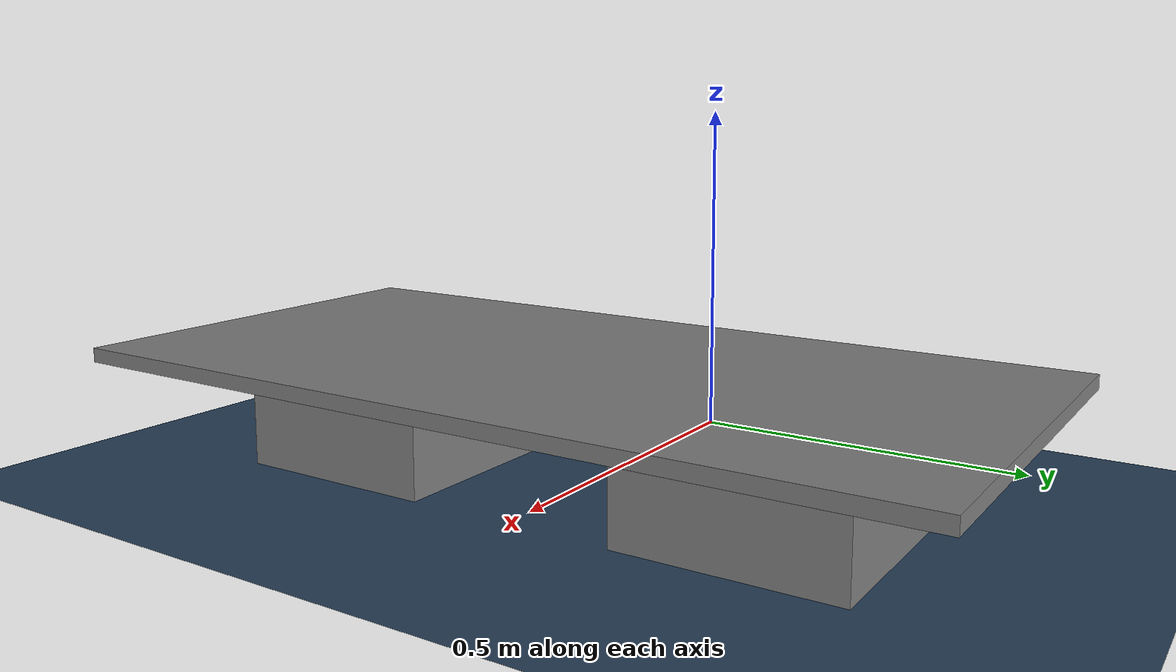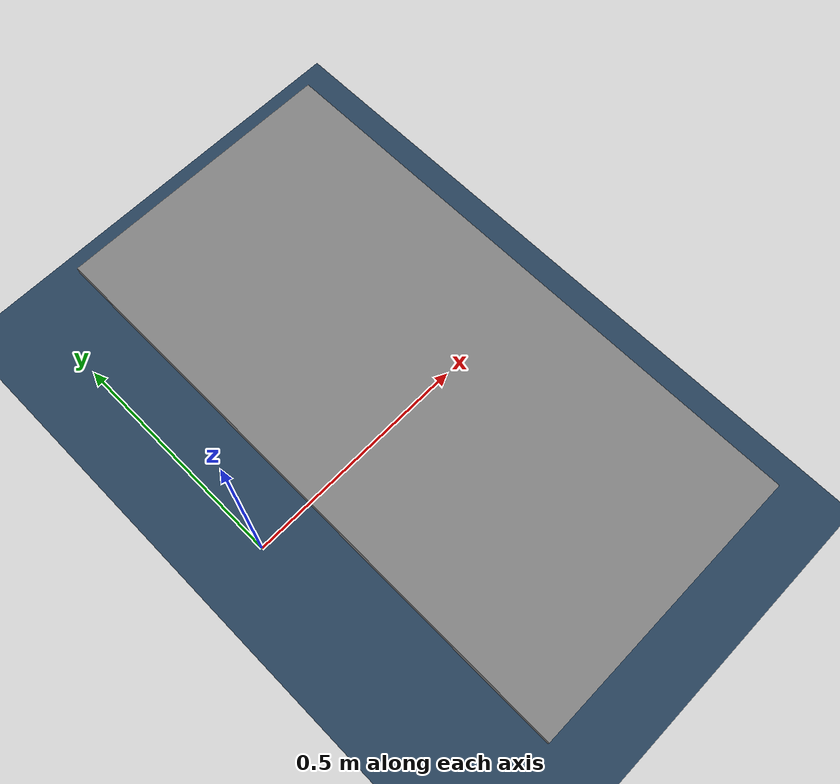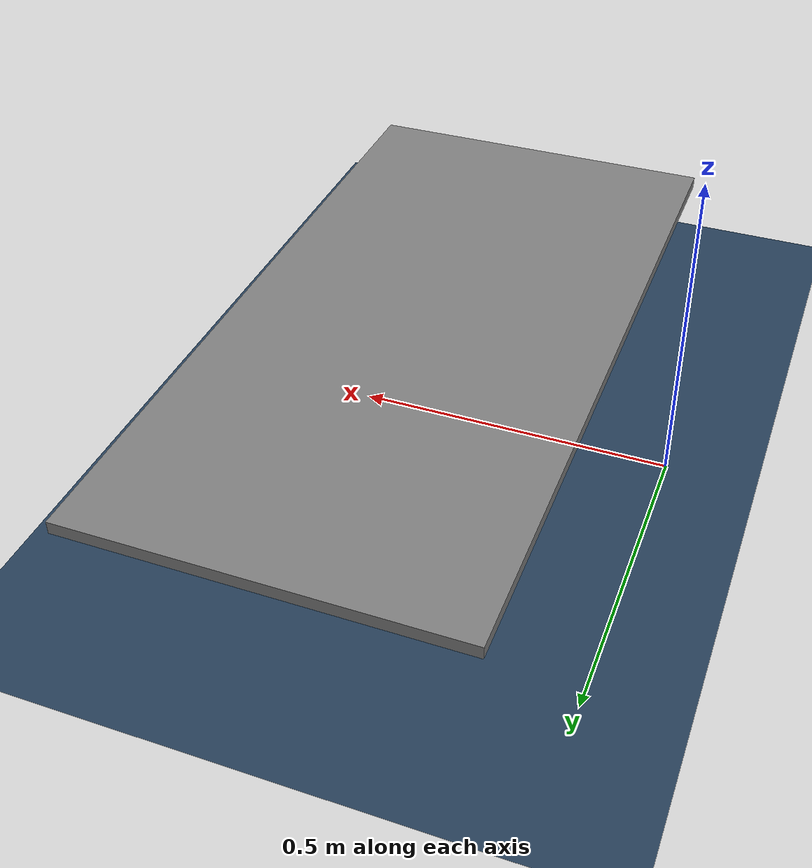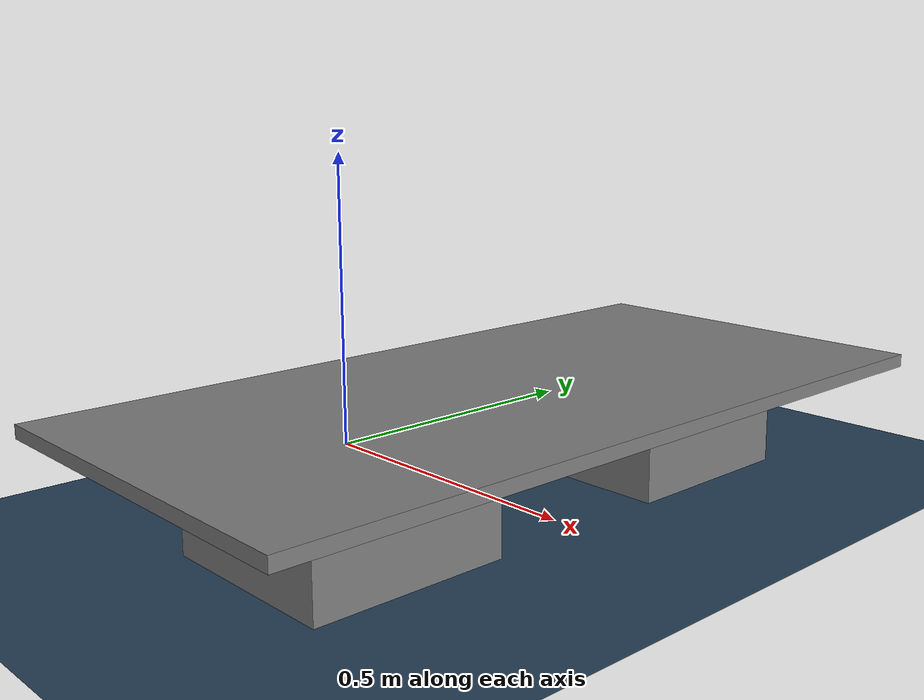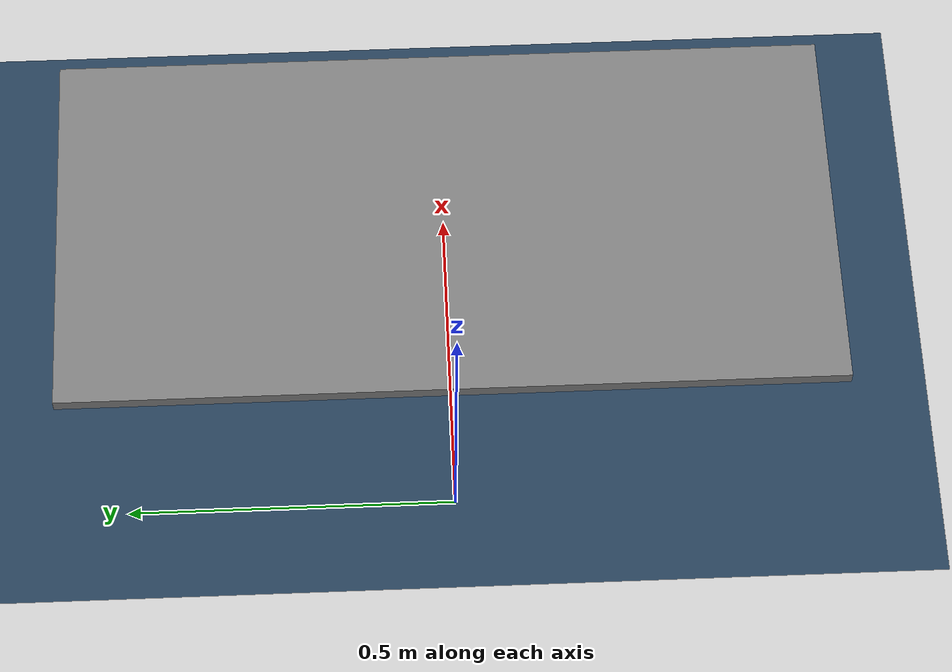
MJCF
<mujoco model="arena">
  <visual>
    <global azimuth="180" elevation="-22.5" />
  </visual>
  <asset>
    <texture name="skybox" type="skybox" builtin="gradient" rgb1=".4 .6 .8" rgb2="0 0 0"
            width="800" height="800" mark="random" markrgb="1 1 1"/>
    <texture name="grid" type="2d" builtin="checker" rgb1=".1 .2 .3" rgb2=".2 .3 .4" width="300" height="300" mark="edge" markrgb=".2 .3 .4"/>
    <material name="grid" texture="grid" texrepeat="1 1" texuniform="true" reflectance=".2"/>
  </asset>
  <visual>
    <headlight ambient=".4 .4 .4" diffuse=".8 .8 .8" specular="0.1 0.1 0.1"/>
    <map znear=".01"/>
    <quality shadowsize="2048"/>
  </visual>
  <default>
    <geom solimp="0.9 0.95 0.001 0.5 2" solref="0.005 1" condim="6" />
  </default>
  <worldbody>
    <geom name="floor" type="plane" size="2 2 2" conaffinity="1" material="grid"/>
    <light directional='true' diffuse='.7 .7 .7' pos='1 .1 2' dir='0 -.1 -2' specular='.3 .3 .3' castshadow='true'/>
    <body>
      <geom type="box" name="table_top" pos=".4 0 0.17" size=".3 .6 0.01" /> <!-- surface at 0.17m + 0.01m = 0.18m-->
      <geom type="box" name="table_column_a" pos=".4 .3 0.085 " size=".15 .15 0.085" />
      <geom type="box" name="table_column_b" pos=".4 -.3 0.085 " size=".15 .15 0.085" />
    </body>
  </worldbody>
</mujoco>
